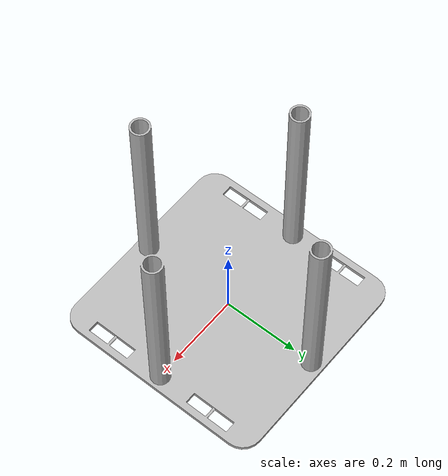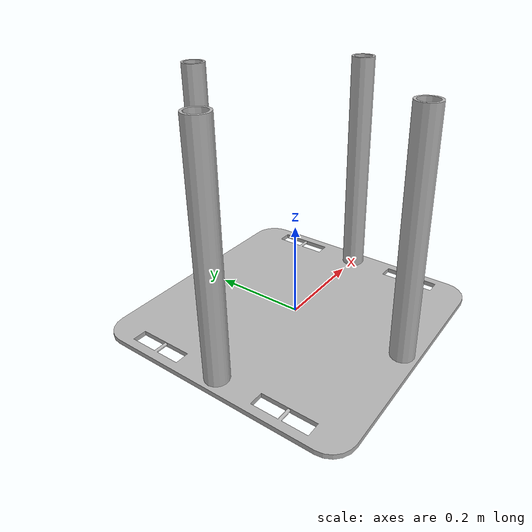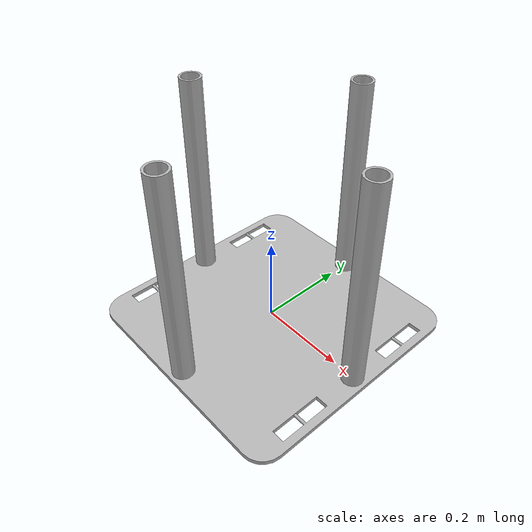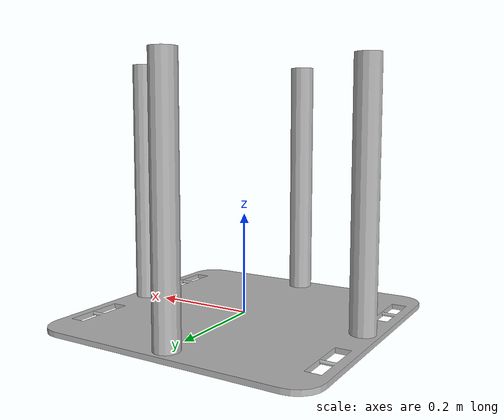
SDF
<?xml version="1.0" ?>
<sdf version="1.6">
  <model name="test8">
    <link name="base_link">
      <inertial>
        <pose>3.67391871240909E-17 -2.83649888143271E-17 0.0759584336413709 0 0 0</pose>
        <mass>4.45287465165593</mass>
        <inertia>
          <ixx>0.110766273018809</ixx>
          <iyy>0.105353330884373</iyy>
          <izz>0.155207158010102</izz>
          <ixy>2.45216382337255E-17</ixy>
          <ixz>1.40550118355875E-19</ixz>
          <iyz>1.45993853537779E-19</iyz>
        </inertia>
      </inertial>
      <visual name="visual_base_link">
        <pose>0 0 0 0 0 0</pose>
        <geometry>
          <mesh>
            <uri>model://test8/meshes/base_link.STL</uri>
          </mesh>
        </geometry>
      </visual>
    </link>
  </model>
</sdf>
